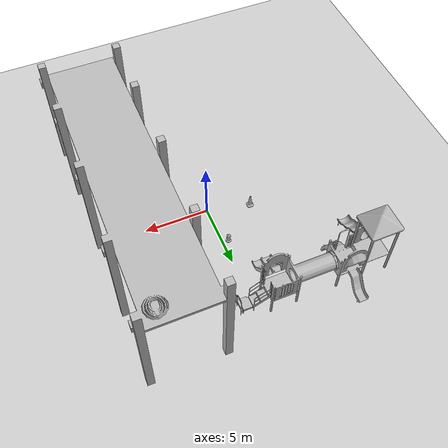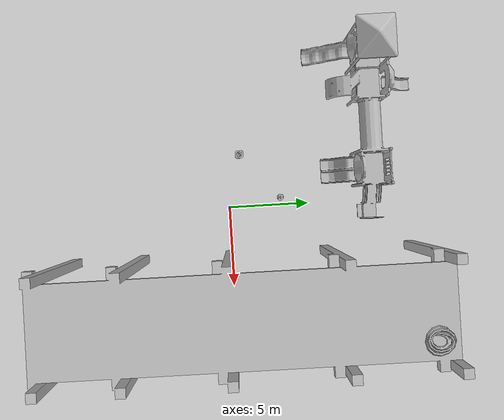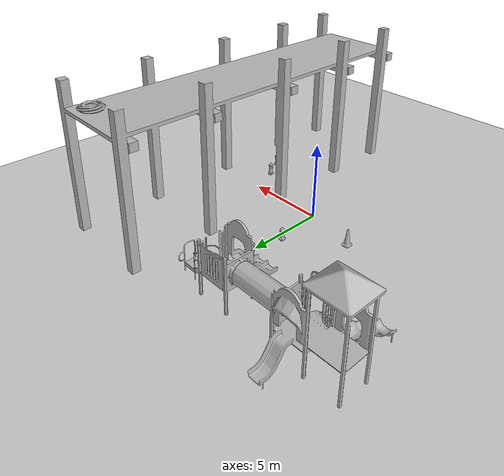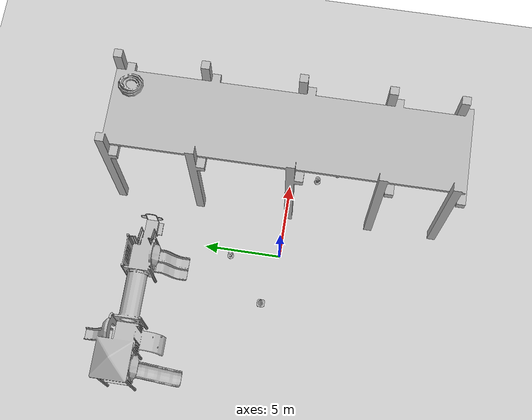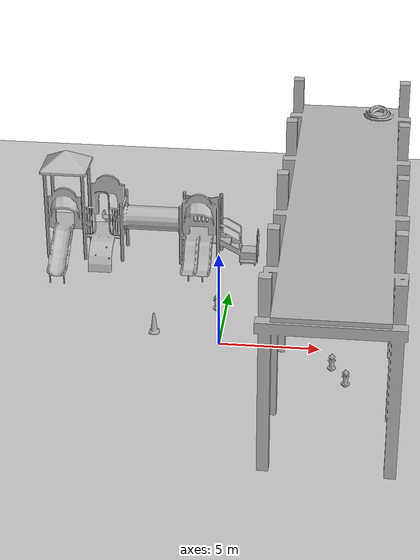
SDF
<sdf version="1.6">
 <world name="default">
  <light name="sun" type="directional">
   <pose>0 0 10 0 -0 0</pose>
   <diffuse>0.8 0.8 0.8 1</diffuse>
   <specular>0.2 0.2 0.2 1</specular>
   <attenuation>
    <range>1000</range>
    <constant>0.9</constant>
    <linear>0.01</linear>
    <quadratic>0.001</quadratic>
   </attenuation>
   <direction>-0.5 0.1 -0.9</direction>
  </light>
  <model name="ground_plane">
   <static>1</static>
   <link name="link">
    <collision name="collision">
     <geometry><plane><normal>0 0 1</normal><size>100 100</size></plane></geometry>
     <surface>
      <contact><collide_bitmask>65535</collide_bitmask></contact>
      <friction><ode><mu>100</mu><mu2>50</mu2></ode></friction>
     </surface>
    </collision>
    <visual name="visual">
     <cast_shadows>0</cast_shadows>
     <geometry><plane><normal>0 0 1</normal><size>100 100</size></plane></geometry>
     <material>
      <script><uri>file://media/materials/scripts/gazebo.material</uri><name>Gazebo/Grey</name></script>
     </material>
    </visual>
   </link>
  </model>
  <gravity>0 0 -9.8</gravity>
  <magnetic_field>6e-06 2.3e-05 -4.2e-05</magnetic_field>
  <atmosphere type="adiabatic"/>
  <physics name="default_physics" default="0" type="ode">
   <max_step_size>0.001</max_step_size>
   <real_time_factor>1</real_time_factor>
   <real_time_update_rate>1000</real_time_update_rate>
  </physics>
  <scene><ambient>0.4 0.4 0.4 1</ambient><background>0.7 0.7 0.7 1</background><shadows>1</shadows></scene>
  <spherical_coordinates>
   <surface_model>EARTH_WGS84</surface_model>
   <latitude_deg>0</latitude_deg>
   <longitude_deg>0</longitude_deg>
   <elevation>0</elevation>
   <heading_deg>0</heading_deg>
  </spherical_coordinates>
  <model name="Construction Cone">
   <link name="link">
    <collision name="collision">
     <geometry>
      <mesh><scale>10 10 10</scale><uri>model://construction_cone/meshes/construction_cone.dae</uri></mesh>
     </geometry>
    </collision>
    <visual name="visual">
     <geometry>
      <mesh><scale>10 10 10</scale><uri>model://construction_cone/meshes/construction_cone.dae</uri></mesh>
     </geometry>
    </visual>
    <inertial>
     <inertia><ixx>1</ixx><ixy>0</ixy><ixz>0</ixz><iyy>1</iyy><iyz>0</iyz><izz>1</izz></inertia>
     <mass>1</mass>
    </inertial>
   </link>
   <pose>-3.33578 0.766383 -0 0 -0 0</pose>
  </model>
  <model name="fire_hydrant">
   <static>1</static>
   <link name="link">
    <collision name="collision">
     <geometry><mesh><uri>model://fire_hydrant/meshes/fire_hydrant.dae</uri></mesh></geometry>
    </collision>
    <visual name="visual">
     <geometry><mesh><uri>model://fire_hydrant/meshes/fire_hydrant.dae</uri></mesh></geometry>
    </visual>
   </link>
   <pose>-0.456535 3.23794 0 0 -0 0</pose>
  </model>
  <model name="fire_hydrant_0">
   <static>1</static>
   <link name="link">
    <collision name="collision">
     <geometry><mesh><uri>model://fire_hydrant/meshes/fire_hydrant.dae</uri></mesh></geometry>
    </collision>
    <visual name="visual">
     <geometry><mesh><uri>model://fire_hydrant/meshes/fire_hydrant.dae</uri></mesh></geometry>
    </visual>
   </link>
   <pose>5.63752 -1.79474 0 0 -0 0</pose>
  </model>
  <model name="fire_hydrant_1">
   <static>1</static>
   <link name="link">
    <collision name="collision">
     <geometry><mesh><uri>model://fire_hydrant/meshes/fire_hydrant.dae</uri></mesh></geometry>
    </collision>
    <visual name="visual">
     <geometry><mesh><uri>model://fire_hydrant/meshes/fire_hydrant.dae</uri></mesh></geometry>
    </visual>
   </link>
   <pose>6.35102 -3.11834 0 0 -0 0</pose>
  </model>
  <model name="pier">
   <static>1</static>
   <link name="link">
    <pose>0 0 7.45747 0 -0 0</pose>
    <collision name="collision_platform">
     <pose>0 11.1915 0.479154 0 -0 0</pose>
     <geometry><box><size>4.99841 22.1059 0.223137</size></box></geometry>
    </collision>
    <collision name="collision_pillar1">
     <pose>2.7658 0.839949 -2.6492 0 -0 0</pose>
     <geometry><box><size>0.526207 0.526207 9.61655</size></box></geometry>
    </collision>
    <collision name="collision_pillar2">
     <pose>2.7658 5.1533 -2.6492 0 -0 0</pose>
     <geometry><box><size>0.526207 0.526207 9.61655</size></box></geometry>
    </collision>
    <collision name="collision_pillar3">
     <pose>2.7658 10.6027 -2.6492 0 -0 0</pose>
     <geometry><box><size>0.526207 0.526207 9.61655</size></box></geometry>
    </collision>
    <collision name="collision_pillar4">
     <pose>2.7658 16.5973 -2.6492 0 -0 0</pose>
     <geometry><box><size>0.526207 0.526207 9.61655</size></box></geometry>
    </collision>
    <collision name="collision_pillar5">
     <pose>2.7658 21.9768 -2.6492 0 -0 0</pose>
     <geometry><box><size>0.526207 0.526207 9.61655</size></box></geometry>
    </collision>
    <collision name="collision_pillar6">
     <pose>-2.7658 0.839949 -2.6492 0 -0 0</pose>
     <geometry><box><size>0.526207 0.526207 9.61655</size></box></geometry>
    </collision>
    <collision name="collision_pillar7">
     <pose>-2.7658 5.1533 -2.6492 0 -0 0</pose>
     <geometry><box><size>0.526207 0.526207 9.61655</size></box></geometry>
    </collision>
    <collision name="collision_pillar8">
     <pose>-2.7658 10.6027 -2.6492 0 -0 0</pose>
     <geometry><box><size>0.526207 0.526207 9.61655</size></box></geometry>
    </collision>
    <collision name="collision_pillar9">
     <pose>-2.7658 16.5973 -2.6492 0 -0 0</pose>
     <geometry><box><size>0.526207 0.526207 9.61655</size></box></geometry>
    </collision>
    <collision name="collision_pillar10">
     <pose>-2.7658 21.9768 -2.6492 0 -0 0</pose>
     <geometry><box><size>0.526207 0.526207 9.61655</size></box></geometry>
    </collision>
    <collision name="collision_beam1">
     <pose>0 0.303862 0.079695 0 -0 0</pose>
     <geometry><box><size>6.28904 0.526207 0.526207</size></box></geometry>
    </collision>
    <collision name="collision_beam2">
     <pose>0 4.61721 0.079695 0 -0 0</pose>
     <geometry><box><size>6.28904 0.526207 0.526207</size></box></geometry>
    </collision>
    <collision name="collision_beam3">
     <pose>0 10.0666 0.079695 0 -0 0</pose>
     <geometry><box><size>6.28904 0.526207 0.526207</size></box></geometry>
    </collision>
    <collision name="collision_beam4">
     <pose>0 16.0612 0.079695 0 -0 0</pose>
     <geometry><box><size>6.28904 0.526207 0.526207</size></box></geometry>
    </collision>
    <collision name="collision_beam5">
     <pose>0 21.4407 0.079695 0 -0 0</pose>
     <geometry><box><size>6.28904 0.526207 0.526207</size></box></geometry>
    </collision>
    <visual name="visual"><geometry><mesh><uri>model://pier/meshes/pier.dae</uri></mesh></geometry></visual>
   </link>
   <pose>5.78307 -10.752 0 0 -0 0</pose>
  </model>
  <model name="playground">
   <static>1</static>
   <link name="link">
    <collision name="collision">
     <geometry><mesh><uri>model://playground/meshes/playground.dae</uri></mesh></geometry>
    </collision>
    <visual name="visual">
     <geometry><mesh><uri>model://playground/meshes/playground.dae</uri></mesh></geometry>
    </visual>
   </link>
   <pose>-4.60713 8.35596 0 0 -0 0</pose>
  </model>
 </world>
</sdf>
